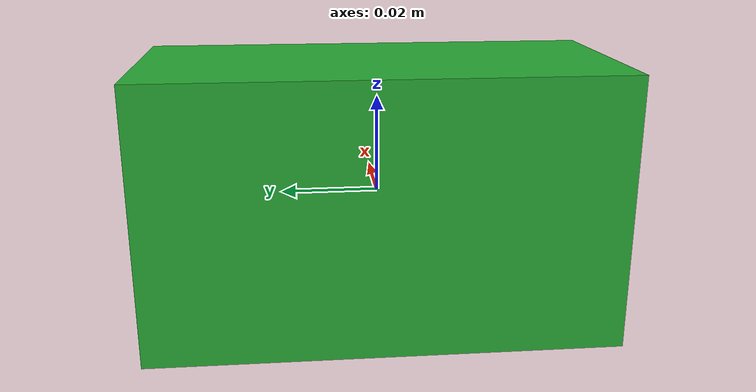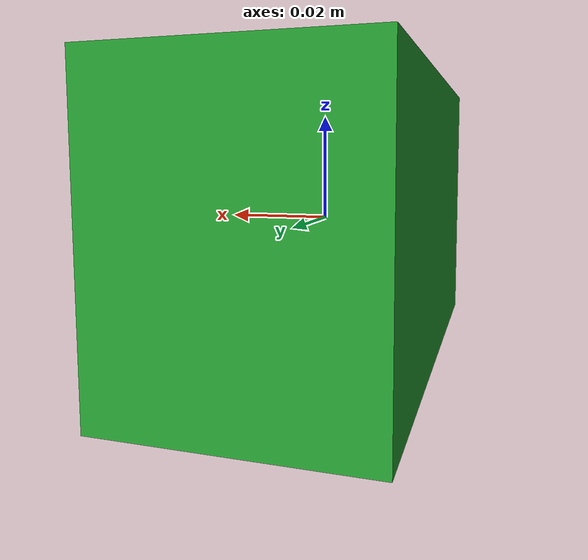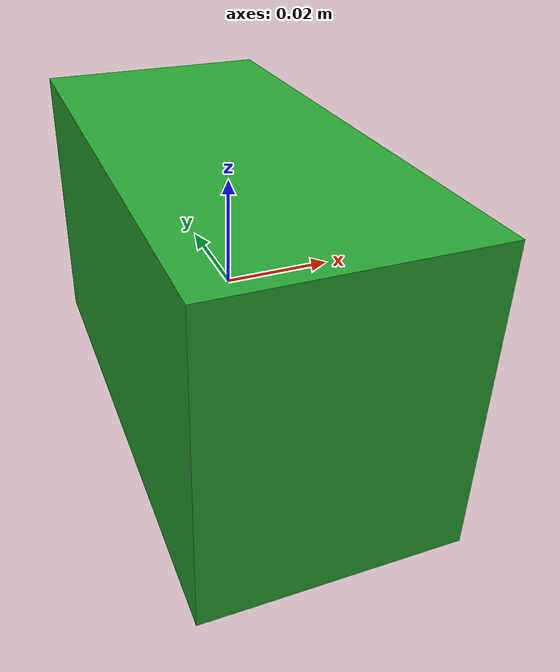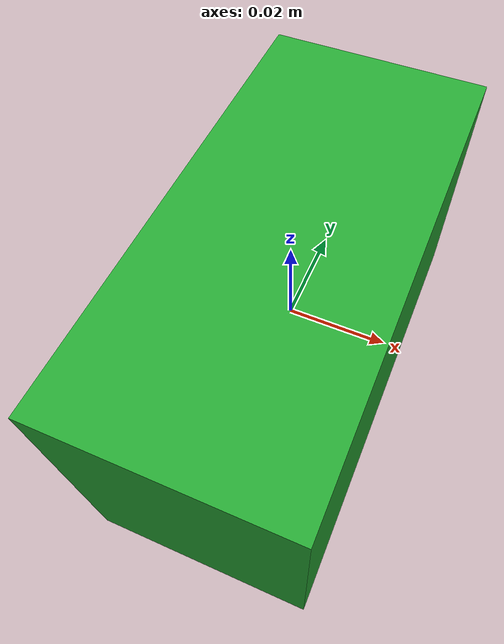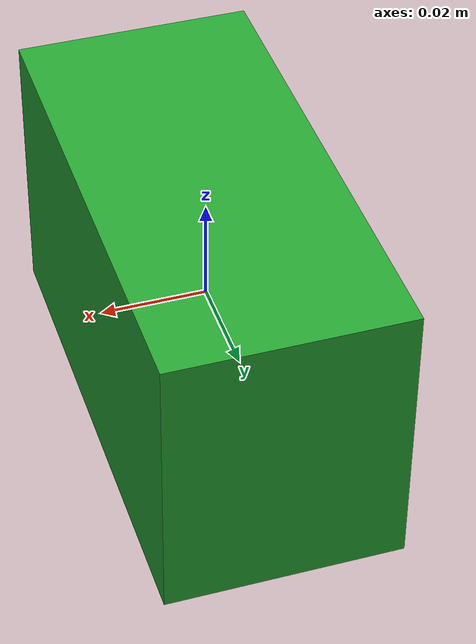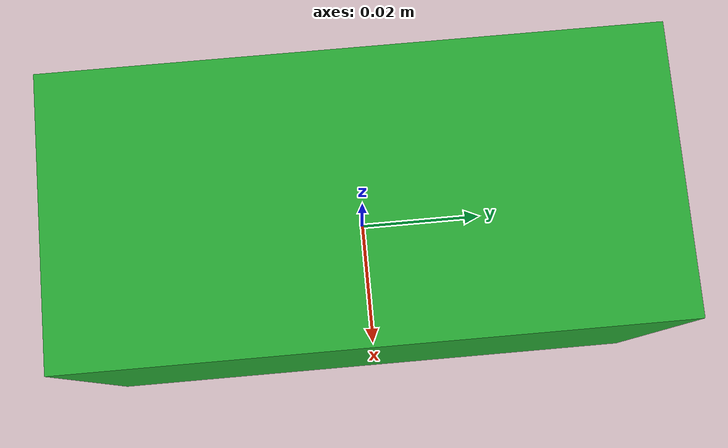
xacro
<?xml version="1.0"?>
<robot xmlns:xacro="http://www.ros.org/wiki/xacro" name="boxGreen">

    <link name="object_base_link">
    </link>

    <joint name="object_base_joint2" type="fixed">
        <parent link="object_base_link"/>
        <child link="object_link2"/>
        <axis xyz="0 0 1" />
        <origin xyz="0 0 0" rpy="0 0 0"/>
    </joint>

   <link name="object_link2">
     <inertial>
       <origin xyz="0 0 0" />
       <mass value="0.05" />
       <inertia  ixx="0.05" ixy="0.0"  ixz="0.0"  iyy="10.0"  iyz="0.0"  izz="0.05" />
     </inertial>
     <visual>
       <origin xyz="0 0 0"/>
       <geometry>
         <box size="0.045 0.095 0.055" />
        </geometry>
     </visual>
     <collision>
       <origin xyz="0 0 0"/>
       <geometry>
         <box size="0.045 0.095 0.055" />
       </geometry>
     </collision>
   </link>

   <gazebo reference="object_link2">
    <material>Gazebo/Green</material>
    <selfCollide>true</selfCollide>
    <mu1>1000</mu1>
    <mu2>1000</mu2>
    <kp>100000000</kp>
    <kd>1</kd>
    <minDepth>0.00001</minDepth>
    <maxVel>0.0001</maxVel>
  </gazebo>

 </robot>
